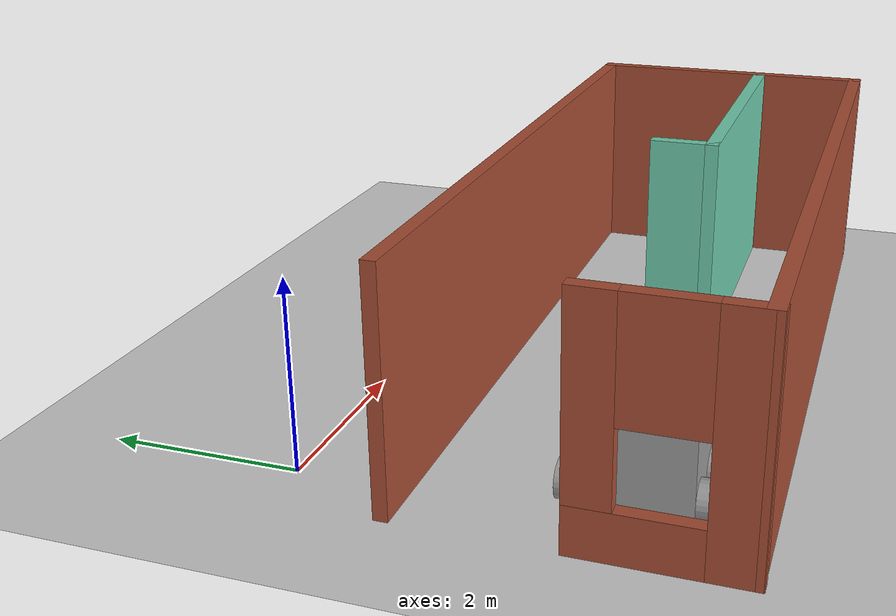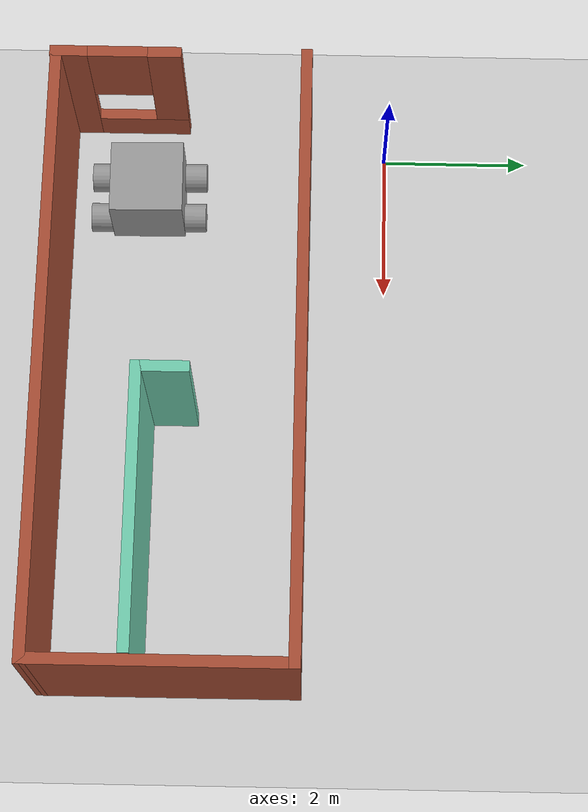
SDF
<sdf version="1.7">
 <world name="default">
  <model name="ground_plane">
   <static>1</static>
   <link name="link">
    <collision name="collision">
     <geometry><plane><normal>0 0 1</normal><size>100 100</size></plane></geometry>
     <surface>
      <contact><collide_bitmask>65535</collide_bitmask></contact>
      <friction><ode><mu>100</mu><mu2>50</mu2></ode></friction>
     </surface>
    </collision>
    <visual name="visual">
     <cast_shadows>0</cast_shadows>
     <geometry><plane><normal>0 0 1</normal><size>100 100</size></plane></geometry>
     <material>
      <script><uri>file://media/materials/scripts/gazebo.material</uri><name>Gazebo/Grey</name></script>
     </material>
    </visual>
   </link>
  </model>
  <model name="model_0">
   <link name="link_1">
    <inertial>
     <mass>1</mass>
     <inertia>
      <ixx>0.166667</ixx>
      <ixy>0</ixy>
      <ixz>0</ixz>
      <iyy>0.166667</iyy>
      <iyz>0</iyz>
      <izz>0.166667</izz>
     </inertia>
    </inertial>
    <pose>-1.26548 -3.71743 0.72499 0 -0 0</pose>
    <visual name="visual">
     <geometry><box><size>1 1 1</size></box></geometry>
     <material>
      <lighting>1</lighting>
      <script><uri>file://media/materials/scripts/gazebo.material</uri><name>Gazebo/Grey</name></script>
      <shader type="pixel"/>
      <emissive>0 0 0 1</emissive>
     </material>
    </visual>
    <collision name="collision">
     <geometry><box><size>1 1 1</size></box></geometry>
     <surface>
      <friction>
       <ode><mu>1</mu><mu2>1</mu2><fdir1>0 0 0</fdir1><slip1>0</slip1><slip2>0</slip2></ode>
       <torsional>
        <coefficient>1</coefficient>
        <patch_radius>0</patch_radius>
        <surface_radius>0</surface_radius>
        <use_patch_radius>1</use_patch_radius>
        <ode><slip>0</slip></ode>
       </torsional>
      </friction>
      <bounce><restitution_coefficient>0</restitution_coefficient><threshold>1e+06</threshold></bounce>
      <contact>
       <collide_without_contact>0</collide_without_contact>
       <collide_without_contact_bitmask>1</collide_without_contact_bitmask>
       <collide_bitmask>1</collide_bitmask>
       <ode>
        <soft_cfm>0</soft_cfm>
        <soft_erp>0.2</soft_erp>
        <kp>1e+13</kp>
        <kd>1</kd>
        <max_vel>0.01</max_vel>
        <min_depth>0</min_depth>
       </ode>
       <bullet>
        <split_impulse>1</split_impulse>
        <split_impulse_penetration_threshold>-0.01</split_impulse_penetration_threshold>
        <soft_cfm>0</soft_cfm>
        <soft_erp>0.2</soft_erp>
        <kp>1e+13</kp>
        <kd>1</kd>
       </bullet>
      </contact>
     </surface>
    </collision>
   </link>
   <link name="link_3">
    <inertial>
     <mass>1</mass>
     <inertia><ixx>0.145833</ixx><ixy>0</ixy><ixz>0</ixz><iyy>0.145833</iyy><iyz>0</iyz><izz>0.125</izz></inertia>
     <pose>0 0 0 1.5707 -0 0</pose>
    </inertial>
    <pose>-1.56548 -4.36745 0.425004 1.5707 -0 0</pose>
    <visual name="visual">
     <geometry><cylinder><radius>0.2</radius><length>0.3</length></cylinder></geometry>
     <material>
      <lighting>1</lighting>
      <script><uri>file://media/materials/scripts/gazebo.material</uri><name>Gazebo/Grey</name></script>
      <shader type="pixel"><normal_map>__default__</normal_map></shader>
      <ambient>0.3 0.3 0.3 1</ambient>
      <diffuse>0.7 0.7 0.7 1</diffuse>
      <specular>0.01 0.01 0.01 1</specular>
      <emissive>0 0 0 1</emissive>
     </material>
    </visual>
    <collision name="collision">
     <geometry><cylinder><radius>0.2</radius><length>0.3</length></cylinder></geometry>
     <surface>
      <friction>
       <ode><mu>1</mu><mu2>1</mu2><fdir1>0 0 0</fdir1><slip1>0</slip1><slip2>0</slip2></ode>
       <torsional>
        <coefficient>1</coefficient>
        <patch_radius>0</patch_radius>
        <surface_radius>0</surface_radius>
        <use_patch_radius>1</use_patch_radius>
        <ode><slip>0</slip></ode>
       </torsional>
      </friction>
      <bounce><restitution_coefficient>0</restitution_coefficient><threshold>1e+06</threshold></bounce>
      <contact>
       <collide_without_contact>0</collide_without_contact>
       <collide_without_contact_bitmask>1</collide_without_contact_bitmask>
       <collide_bitmask>1</collide_bitmask>
       <ode>
        <soft_cfm>0</soft_cfm>
        <soft_erp>0.2</soft_erp>
        <kp>1e+13</kp>
        <kd>1</kd>
        <max_vel>0.01</max_vel>
        <min_depth>0</min_depth>
       </ode>
       <bullet>
        <split_impulse>1</split_impulse>
        <split_impulse_penetration_threshold>-0.01</split_impulse_penetration_threshold>
        <soft_cfm>0</soft_cfm>
        <soft_erp>0.2</soft_erp>
        <kp>1e+13</kp>
        <kd>1</kd>
       </bullet>
      </contact>
     </surface>
    </collision>
   </link>
   <link name="link_3_clone">
    <inertial>
     <mass>1</mass>
     <inertia><ixx>0.145833</ixx><ixy>0</ixy><ixz>0</ixz><iyy>0.145833</iyy><iyz>0</iyz><izz>0.125</izz></inertia>
     <pose>0 0 0 1.5707 -0 0</pose>
    </inertial>
    <pose>-1.56523 -3.06657 0.425002 1.5707 -0 0</pose>
    <visual name="visual">
     <geometry><cylinder><radius>0.2</radius><length>0.3</length></cylinder></geometry>
     <material>
      <lighting>1</lighting>
      <script><uri>file://media/materials/scripts/gazebo.material</uri><name>Gazebo/Grey</name></script>
      <shader type="pixel"><normal_map>__default__</normal_map></shader>
      <ambient>0.3 0.3 0.3 1</ambient>
      <diffuse>0.7 0.7 0.7 1</diffuse>
      <specular>0.01 0.01 0.01 1</specular>
      <emissive>0 0 0 1</emissive>
     </material>
    </visual>
    <collision name="collision">
     <geometry><cylinder><radius>0.2</radius><length>0.3</length></cylinder></geometry>
     <surface>
      <friction>
       <ode><mu>1</mu><mu2>1</mu2><fdir1>0 0 0</fdir1><slip1>0</slip1><slip2>0</slip2></ode>
       <torsional>
        <coefficient>1</coefficient>
        <patch_radius>0</patch_radius>
        <surface_radius>0</surface_radius>
        <use_patch_radius>1</use_patch_radius>
        <ode><slip>0</slip></ode>
       </torsional>
      </friction>
      <bounce><restitution_coefficient>0</restitution_coefficient><threshold>1e+06</threshold></bounce>
      <contact>
       <collide_without_contact>0</collide_without_contact>
       <collide_without_contact_bitmask>1</collide_without_contact_bitmask>
       <collide_bitmask>1</collide_bitmask>
       <ode>
        <soft_cfm>0</soft_cfm>
        <soft_erp>0.2</soft_erp>
        <kp>1e+13</kp>
        <kd>1</kd>
        <max_vel>0.01</max_vel>
        <min_depth>0</min_depth>
       </ode>
       <bullet>
        <split_impulse>1</split_impulse>
        <split_impulse_penetration_threshold>-0.01</split_impulse_penetration_threshold>
        <soft_cfm>0</soft_cfm>
        <soft_erp>0.2</soft_erp>
        <kp>1e+13</kp>
        <kd>1</kd>
       </bullet>
      </contact>
     </surface>
    </collision>
   </link>
   <link name="link_3_clone_clone">
    <inertial>
     <mass>1</mass>
     <inertia><ixx>0.145833</ixx><ixy>0</ixy><ixz>0</ixz><iyy>0.145833</iyy><iyz>0</iyz><izz>0.125</izz></inertia>
     <pose>0 0 0 1.5707 -0 0</pose>
    </inertial>
    <pose>-0.965733 -4.36829 0.425001 1.5707 -0 0</pose>
    <visual name="visual">
     <geometry><cylinder><radius>0.2</radius><length>0.3</length></cylinder></geometry>
     <material>
      <lighting>1</lighting>
      <script><uri>file://media/materials/scripts/gazebo.material</uri><name>Gazebo/Grey</name></script>
      <shader type="pixel"><normal_map>__default__</normal_map></shader>
      <ambient>0.3 0.3 0.3 1</ambient>
      <diffuse>0.7 0.7 0.7 1</diffuse>
      <specular>0.01 0.01 0.01 1</specular>
      <emissive>0 0 0 1</emissive>
     </material>
    </visual>
    <collision name="collision">
     <geometry><cylinder><radius>0.2</radius><length>0.3</length></cylinder></geometry>
     <surface>
      <friction>
       <ode><mu>1</mu><mu2>1</mu2><fdir1>0 0 0</fdir1><slip1>0</slip1><slip2>0</slip2></ode>
       <torsional>
        <coefficient>1</coefficient>
        <patch_radius>0</patch_radius>
        <surface_radius>0</surface_radius>
        <use_patch_radius>1</use_patch_radius>
        <ode><slip>0</slip></ode>
       </torsional>
      </friction>
      <bounce><restitution_coefficient>0</restitution_coefficient><threshold>1e+06</threshold></bounce>
      <contact>
       <collide_without_contact>0</collide_without_contact>
       <collide_without_contact_bitmask>1</collide_without_contact_bitmask>
       <collide_bitmask>1</collide_bitmask>
       <ode>
        <soft_cfm>0</soft_cfm>
        <soft_erp>0.2</soft_erp>
        <kp>1e+13</kp>
        <kd>1</kd>
        <max_vel>0.01</max_vel>
        <min_depth>0</min_depth>
       </ode>
       <bullet>
        <split_impulse>1</split_impulse>
        <split_impulse_penetration_threshold>-0.01</split_impulse_penetration_threshold>
        <soft_cfm>0</soft_cfm>
        <soft_erp>0.2</soft_erp>
        <kp>1e+13</kp>
        <kd>1</kd>
       </bullet>
      </contact>
     </surface>
    </collision>
   </link>
   <link name="link_3_clone_clone_clone">
    <inertial>
     <mass>1</mass>
     <inertia><ixx>0.145833</ixx><ixy>0</ixy><ixz>0</ixz><iyy>0.145833</iyy><iyz>0</iyz><izz>0.125</izz></inertia>
     <pose>0 0 0 1.5707 -0 0</pose>
    </inertial>
    <pose>-0.964509 -3.06724 0.425003 1.5707 -1e-06 -0.000844</pose>
    <visual name="visual">
     <geometry><cylinder><radius>0.2</radius><length>0.3</length></cylinder></geometry>
     <material>
      <lighting>1</lighting>
      <script><uri>file://media/materials/scripts/gazebo.material</uri><name>Gazebo/Grey</name></script>
      <shader type="pixel"><normal_map>__default__</normal_map></shader>
      <ambient>0.3 0.3 0.3 1</ambient>
      <diffuse>0.7 0.7 0.7 1</diffuse>
      <specular>0.01 0.01 0.01 1</specular>
      <emissive>0 0 0 1</emissive>
     </material>
    </visual>
    <collision name="collision">
     <geometry><cylinder><radius>0.2</radius><length>0.3</length></cylinder></geometry>
     <surface>
      <friction>
       <ode><mu>1</mu><mu2>1</mu2><fdir1>0 0 0</fdir1><slip1>0</slip1><slip2>0</slip2></ode>
       <torsional>
        <coefficient>1</coefficient>
        <patch_radius>0</patch_radius>
        <surface_radius>0</surface_radius>
        <use_patch_radius>1</use_patch_radius>
        <ode><slip>0</slip></ode>
       </torsional>
      </friction>
      <bounce><restitution_coefficient>0</restitution_coefficient><threshold>1e+06</threshold></bounce>
      <contact>
       <collide_without_contact>0</collide_without_contact>
       <collide_without_contact_bitmask>1</collide_without_contact_bitmask>
       <collide_bitmask>1</collide_bitmask>
       <ode>
        <soft_cfm>0</soft_cfm>
        <soft_erp>0.2</soft_erp>
        <kp>1e+13</kp>
        <kd>1</kd>
        <max_vel>0.01</max_vel>
        <min_depth>0</min_depth>
       </ode>
       <bullet>
        <split_impulse>1</split_impulse>
        <split_impulse_penetration_threshold>-0.01</split_impulse_penetration_threshold>
        <soft_cfm>0</soft_cfm>
        <soft_erp>0.2</soft_erp>
        <kp>1e+13</kp>
        <kd>1</kd>
       </bullet>
      </contact>
     </surface>
    </collision>
   </link>
   <joint name="link_1_JOINT_0_0" type="revolute">
    <parent>link_1</parent>
    <child>link_3_clone</child>
    <axis>
     <xyz>0 0 1</xyz>
     <limit>
      <lower>-1.79769e+308</lower>
      <upper>1.79769e+308</upper>
      <effort>-1</effort>
      <velocity>-1</velocity>
     </limit>
     <dynamics>
      <spring_reference>0</spring_reference>
      <spring_stiffness>0</spring_stiffness>
      <damping>0</damping>
      <friction>0</friction>
     </dynamics>
    </axis>
    <physics>
     <ode><limit><cfm>0</cfm><erp>0.2</erp></limit><suspension><cfm>0</cfm><erp>0.2</erp></suspension></ode>
    </physics>
   </joint>
   <joint name="link_1_JOINT_0" type="revolute">
    <parent>link_1</parent>
    <child>link_3</child>
    <pose>0 0 0 0 -0.09 0</pose>
    <axis>
     <xyz>0 0 1</xyz>
     <limit>
      <lower>-1.79769e+308</lower>
      <upper>1.79769e+308</upper>
      <effort>-1</effort>
      <velocity>-1</velocity>
     </limit>
     <dynamics>
      <spring_reference>0</spring_reference>
      <spring_stiffness>0</spring_stiffness>
      <damping>0</damping>
      <friction>0</friction>
     </dynamics>
    </axis>
    <physics>
     <ode><limit><cfm>0</cfm><erp>0.2</erp></limit><suspension><cfm>0</cfm><erp>0.2</erp></suspension></ode>
    </physics>
   </joint>
   <joint name="link_1_JOINT_1" type="revolute">
    <parent>link_1</parent>
    <child>link_3_clone_clone_clone</child>
    <axis>
     <xyz>0 0 1</xyz>
     <limit>
      <lower>-1.79769e+308</lower>
      <upper>1.79769e+308</upper>
      <effort>-1</effort>
      <velocity>-1</velocity>
     </limit>
     <dynamics>
      <spring_reference>0</spring_reference>
      <spring_stiffness>0</spring_stiffness>
      <damping>0</damping>
      <friction>0</friction>
     </dynamics>
    </axis>
    <physics>
     <ode><limit><cfm>0</cfm><erp>0.2</erp></limit><suspension><cfm>0</cfm><erp>0.2</erp></suspension></ode>
    </physics>
   </joint>
   <joint name="link_1_JOINT_2" type="revolute">
    <parent>link_1</parent>
    <child>link_3_clone_clone</child>
    <axis>
     <xyz>0 0 1</xyz>
     <limit>
      <lower>-1.79769e+308</lower>
      <upper>1.79769e+308</upper>
      <effort>-1</effort>
      <velocity>-1</velocity>
     </limit>
     <dynamics>
      <spring_reference>0</spring_reference>
      <spring_stiffness>0</spring_stiffness>
      <damping>0</damping>
      <friction>0</friction>
     </dynamics>
    </axis>
    <physics>
     <ode><limit><cfm>0</cfm><erp>0.2</erp></limit><suspension><cfm>0</cfm><erp>0.2</erp></suspension></ode>
    </physics>
   </joint>
   <static>0</static>
   <pose>1.89708 0.424056 -0.22497 2e-06 -1.2e-05 0.011092</pose>
  </model>
  <model name="Building">
   <pose>3.57313 -2.44482 0 0 -0 0</pose>
   <link name="Wall_0">
    <collision name="Wall_0_Collision">
     <geometry><box><size>8.25 0.15 2.5</size></box></geometry>
     <pose>0 0 1.25 0 -0 0</pose>
    </collision>
    <visual name="Wall_0_Visual">
     <pose>0 0 1.25 0 -0 0</pose>
     <geometry><box><size>8.25 0.15 2.5</size></box></geometry>
     <material>
      <script><uri>file://media/materials/scripts/gazebo.material</uri><name>Gazebo/Bricks</name></script>
      <ambient>1 1 1 1</ambient>
     </material>
     <meta><layer>0</layer></meta>
    </visual>
    <pose>-0 1.32759 0 0 -0 0</pose>
   </link>
   <link name="Wall_1">
    <collision name="Wall_1_Collision">
     <geometry><box><size>3.5 0.15 2.5</size></box></geometry>
     <pose>0 0 1.25 0 -0 0</pose>
    </collision>
    <visual name="Wall_1_Visual">
     <pose>0 0 1.25 0 -0 0</pose>
     <geometry><box><size>3.5 0.15 2.5</size></box></geometry>
     <material>
      <script><uri>file://media/materials/scripts/gazebo.material</uri><name>Gazebo/Bricks</name></script>
      <ambient>1 1 1 1</ambient>
     </material>
     <meta><layer>0</layer></meta>
    </visual>
    <pose>4.05 -0.347407 0 0 -0 -1.5708</pose>
   </link>
   <link name="Wall_2">
    <collision name="Wall_2_Collision">
     <geometry><box><size>8.25 0.15 2.5</size></box></geometry>
     <pose>0 0 1.25 0 -0 0</pose>
    </collision>
    <visual name="Wall_2_Visual">
     <pose>0 0 1.25 0 -0 0</pose>
     <geometry><box><size>8.25 0.15 2.5</size></box></geometry>
     <material>
      <script><uri>file://media/materials/scripts/gazebo.material</uri><name>Gazebo/Bricks</name></script>
      <ambient>1 1 1 1</ambient>
     </material>
     <meta><layer>0</layer></meta>
    </visual>
    <pose>-0 -2.01241 0 0 -0 3.13912</pose>
   </link>
   <link name="Wall_3">
    <pose>-4.05 -1.21241 0 0 -0 1.5708</pose>
    <visual name="Wall_3_Visual_0">
     <pose>-0.625192 0 1.25 0 -0 0</pose>
     <geometry><box><size>0.499615 0.15 2.5</size></box></geometry>
     <material>
      <script><uri>file://media/materials/scripts/gazebo.material</uri><name>Gazebo/Bricks</name></script>
      <ambient>1 1 1 1</ambient>
     </material>
     <meta><layer>0</layer></meta>
    </visual>
    <collision name="Wall_3_Collision_0">
     <geometry><box><size>0.499615 0.15 2.5</size></box></geometry>
     <pose>-0.625192 0 1.25 0 -0 0</pose>
    </collision>
    <visual name="Wall_3_Visual_1">
     <pose>0.249808 0 0.25 0 -0 0</pose>
     <geometry><box><size>1.25039 0.15 0.5</size></box></geometry>
     <material>
      <script><uri>file://media/materials/scripts/gazebo.material</uri><name>Gazebo/Bricks</name></script>
      <ambient>1 1 1 1</ambient>
     </material>
     <meta><layer>0</layer></meta>
    </visual>
    <collision name="Wall_3_Collision_1">
     <geometry><box><size>1.25039 0.15 0.5</size></box></geometry>
     <pose>0.249808 0 0.25 0 -0 0</pose>
    </collision>
    <visual name="Wall_3_Visual_2">
     <pose>0.649808 0 1.5 0 -0 0</pose>
     <geometry><box><size>0.450385 0.15 2</size></box></geometry>
     <material>
      <script><uri>file://media/materials/scripts/gazebo.material</uri><name>Gazebo/Bricks</name></script>
      <ambient>1 1 1 1</ambient>
     </material>
     <meta><layer>0</layer></meta>
    </visual>
    <collision name="Wall_3_Collision_2">
     <geometry><box><size>0.450385 0.15 2</size></box></geometry>
     <pose>0.649808 0 1.5 0 -0 0</pose>
    </collision>
    <visual name="Wall_3_Visual_3">
     <pose>0.024615 0 1.9 0 -0 0</pose>
     <geometry><box><size>0.8 0.15 1.2</size></box></geometry>
     <material>
      <script><uri>file://media/materials/scripts/gazebo.material</uri><name>Gazebo/Bricks</name></script>
      <ambient>1 1 1 1</ambient>
     </material>
     <meta><layer>0</layer></meta>
    </visual>
    <collision name="Wall_3_Collision_3">
     <geometry><box><size>0.8 0.15 1.2</size></box></geometry>
     <pose>0.024615 0 1.9 0 -0 0</pose>
    </collision>
   </link>
   <link name="Wall_5">
    <collision name="Wall_5_Collision">
     <geometry><box><size>0.75 0.15 2.5</size></box></geometry>
     <pose>0 0 1.25 0 -0 0</pose>
    </collision>
    <visual name="Wall_5_Visual">
     <pose>0 0 1.25 0 -0 0</pose>
     <geometry><box><size>0.75 0.15 2.5</size></box></geometry>
     <material>
      <script><uri>file://media/materials/scripts/gazebo.material</uri><name>Gazebo/Grey</name></script>
      <ambient>0.435294 0.796078 0.67451 1</ambient>
     </material>
     <meta><layer>0</layer></meta>
    </visual>
    <pose>0.31 -0.452407 0 0 -0 -1.5708</pose>
   </link>
   <link name="Wall_6">
    <collision name="Wall_6_Collision">
     <geometry><box><size>3.73013 0.15 2.5</size></box></geometry>
     <pose>0 0 1.25 0 -0 0</pose>
    </collision>
    <visual name="Wall_6_Visual">
     <pose>0 0 1.25 0 -0 0</pose>
     <geometry><box><size>3.73013 0.15 2.5</size></box></geometry>
     <material>
      <script><uri>file://media/materials/scripts/gazebo.material</uri><name>Gazebo/Grey</name></script>
      <ambient>0.435294 0.796078 0.67451 1</ambient>
     </material>
     <meta><layer>0</layer></meta>
    </visual>
    <pose>2.1 -0.762407 0 0 -0 0</pose>
   </link>
   <static>1</static>
  </model>
 </world>
</sdf>
